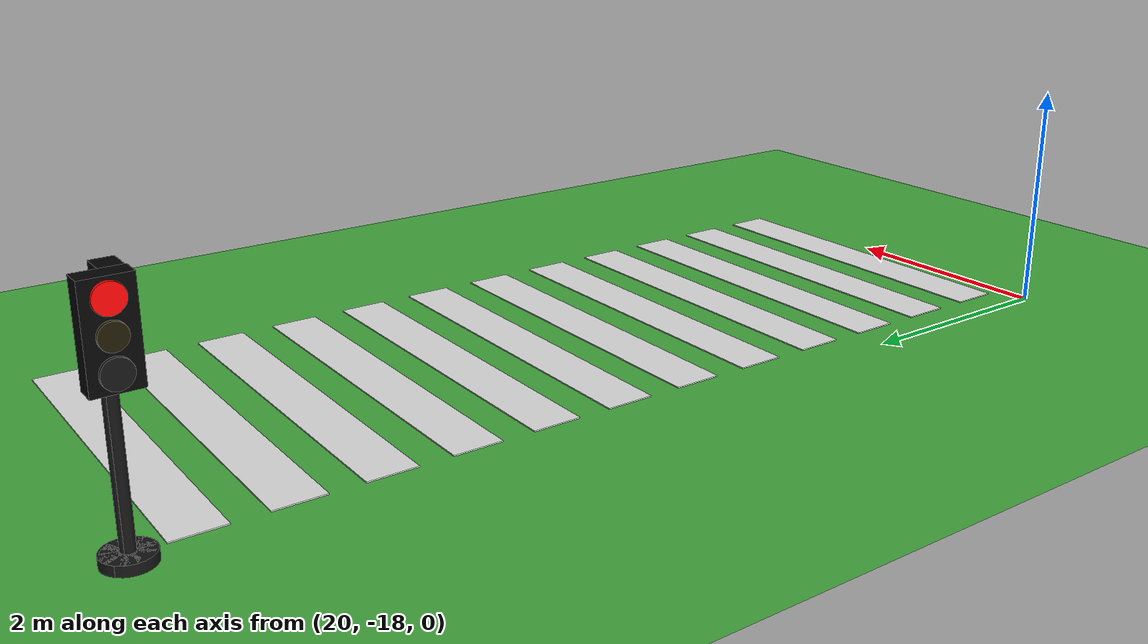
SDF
<sdf version="1.10">
 <world name="city_second">
  <model name="ground_plane">
   <static>true</static>
   <link name="link">
    <collision name="collision">
     <geometry><plane><normal>0 0 1</normal><size>300 300</size></plane></geometry>
    </collision>
    <visual name="visual">
     <geometry><plane><normal>0 0 1</normal><size>300 300</size></plane></geometry>
     <material>
      <ambient>0.280000001 0.689999998 0.25999999 1</ambient>
      <diffuse>0.280000001 0.689999998 0.25999999 1</diffuse>
      <specular>0.0299999993 0.0299999993 0.0299999993 1</specular>
     </material>
    </visual>
    <inertial>
     <mass>1</mass>
     <inertia><ixx>1</ixx><ixy>0</ixy><ixz>0</ixz><iyy>1</iyy><iyz>0</iyz><izz>1</izz></inertia>
    </inertial>
   </link>
  </model>
  <model name="crosswalk_v_2_1_east_5_4">
   <static>true</static>
   <pose>21.8748 -13.7462 0.017000000000000001 0 0 0</pose>
   <link name="stripe_1">
    <collision name="collision">
     <geometry><box><size>3.2000000000000002 0.41999999999999998 0.01</size></box></geometry>
    </collision>
    <visual name="visual">
     <geometry><box><size>3.2000000000000002 0.41999999999999998 0.01</size></box></geometry>
     <material>
      <ambient>0.920000017 0.920000017 0.930000007 1</ambient>
      <diffuse>0.920000017 0.920000017 0.930000007 1</diffuse>
      <specular>0.0299999993 0.0299999993 0.0299999993 1</specular>
     </material>
    </visual>
    <pose>0 -3.8500000000000001 0 0 0 0</pose>
    <inertial>
     <mass>1</mass>
     <inertia><ixx>1</ixx><ixy>0</ixy><ixz>0</ixz><iyy>1</iyy><iyz>0</iyz><izz>1</izz></inertia>
    </inertial>
   </link>
   <link name="stripe_2">
    <collision name="collision">
     <geometry><box><size>3.2000000000000002 0.41999999999999998 0.01</size></box></geometry>
    </collision>
    <visual name="visual">
     <geometry><box><size>3.2000000000000002 0.41999999999999998 0.01</size></box></geometry>
     <material>
      <ambient>0.920000017 0.920000017 0.930000007 1</ambient>
      <diffuse>0.920000017 0.920000017 0.930000007 1</diffuse>
      <specular>0.0299999993 0.0299999993 0.0299999993 1</specular>
     </material>
    </visual>
    <pose>0 -3.1499999999999999 0 0 0 0</pose>
    <inertial>
     <mass>1</mass>
     <inertia><ixx>1</ixx><ixy>0</ixy><ixz>0</ixz><iyy>1</iyy><iyz>0</iyz><izz>1</izz></inertia>
    </inertial>
   </link>
   <link name="stripe_3">
    <collision name="collision">
     <geometry><box><size>3.2000000000000002 0.41999999999999998 0.01</size></box></geometry>
    </collision>
    <visual name="visual">
     <geometry><box><size>3.2000000000000002 0.41999999999999998 0.01</size></box></geometry>
     <material>
      <ambient>0.920000017 0.920000017 0.930000007 1</ambient>
      <diffuse>0.920000017 0.920000017 0.930000007 1</diffuse>
      <specular>0.0299999993 0.0299999993 0.0299999993 1</specular>
     </material>
    </visual>
    <pose>0 -2.4500000000000002 0 0 0 0</pose>
    <inertial>
     <mass>1</mass>
     <inertia><ixx>1</ixx><ixy>0</ixy><ixz>0</ixz><iyy>1</iyy><iyz>0</iyz><izz>1</izz></inertia>
    </inertial>
   </link>
   <link name="stripe_4">
    <collision name="collision">
     <geometry><box><size>3.2000000000000002 0.41999999999999998 0.01</size></box></geometry>
    </collision>
    <visual name="visual">
     <geometry><box><size>3.2000000000000002 0.41999999999999998 0.01</size></box></geometry>
     <material>
      <ambient>0.920000017 0.920000017 0.930000007 1</ambient>
      <diffuse>0.920000017 0.920000017 0.930000007 1</diffuse>
      <specular>0.0299999993 0.0299999993 0.0299999993 1</specular>
     </material>
    </visual>
    <pose>0 -1.75 0 0 0 0</pose>
    <inertial>
     <mass>1</mass>
     <inertia><ixx>1</ixx><ixy>0</ixy><ixz>0</ixz><iyy>1</iyy><iyz>0</iyz><izz>1</izz></inertia>
    </inertial>
   </link>
   <link name="stripe_5">
    <collision name="collision">
     <geometry><box><size>3.2000000000000002 0.41999999999999998 0.01</size></box></geometry>
    </collision>
    <visual name="visual">
     <geometry><box><size>3.2000000000000002 0.41999999999999998 0.01</size></box></geometry>
     <material>
      <ambient>0.920000017 0.920000017 0.930000007 1</ambient>
      <diffuse>0.920000017 0.920000017 0.930000007 1</diffuse>
      <specular>0.0299999993 0.0299999993 0.0299999993 1</specular>
     </material>
    </visual>
    <pose>0 -1.05 0 0 0 0</pose>
    <inertial>
     <mass>1</mass>
     <inertia><ixx>1</ixx><ixy>0</ixy><ixz>0</ixz><iyy>1</iyy><iyz>0</iyz><izz>1</izz></inertia>
    </inertial>
   </link>
   <link name="stripe_6">
    <collision name="collision">
     <geometry><box><size>3.2000000000000002 0.41999999999999998 0.01</size></box></geometry>
    </collision>
    <visual name="visual">
     <geometry><box><size>3.2000000000000002 0.41999999999999998 0.01</size></box></geometry>
     <material>
      <ambient>0.920000017 0.920000017 0.930000007 1</ambient>
      <diffuse>0.920000017 0.920000017 0.930000007 1</diffuse>
      <specular>0.0299999993 0.0299999993 0.0299999993 1</specular>
     </material>
    </visual>
    <pose>0 -0.34999999999999998 0 0 0 0</pose>
    <inertial>
     <mass>1</mass>
     <inertia><ixx>1</ixx><ixy>0</ixy><ixz>0</ixz><iyy>1</iyy><iyz>0</iyz><izz>1</izz></inertia>
    </inertial>
   </link>
   <link name="stripe_7">
    <collision name="collision">
     <geometry><box><size>3.2000000000000002 0.41999999999999998 0.01</size></box></geometry>
    </collision>
    <visual name="visual">
     <geometry><box><size>3.2000000000000002 0.41999999999999998 0.01</size></box></geometry>
     <material>
      <ambient>0.920000017 0.920000017 0.930000007 1</ambient>
      <diffuse>0.920000017 0.920000017 0.930000007 1</diffuse>
      <specular>0.0299999993 0.0299999993 0.0299999993 1</specular>
     </material>
    </visual>
    <pose>0 0.34999999999999998 0 0 0 0</pose>
    <inertial>
     <mass>1</mass>
     <inertia><ixx>1</ixx><ixy>0</ixy><ixz>0</ixz><iyy>1</iyy><iyz>0</iyz><izz>1</izz></inertia>
    </inertial>
   </link>
   <link name="stripe_8">
    <collision name="collision">
     <geometry><box><size>3.2000000000000002 0.41999999999999998 0.01</size></box></geometry>
    </collision>
    <visual name="visual">
     <geometry><box><size>3.2000000000000002 0.41999999999999998 0.01</size></box></geometry>
     <material>
      <ambient>0.920000017 0.920000017 0.930000007 1</ambient>
      <diffuse>0.920000017 0.920000017 0.930000007 1</diffuse>
      <specular>0.0299999993 0.0299999993 0.0299999993 1</specular>
     </material>
    </visual>
    <pose>0 1.05 0 0 0 0</pose>
    <inertial>
     <mass>1</mass>
     <inertia><ixx>1</ixx><ixy>0</ixy><ixz>0</ixz><iyy>1</iyy><iyz>0</iyz><izz>1</izz></inertia>
    </inertial>
   </link>
   <link name="stripe_9">
    <collision name="collision">
     <geometry><box><size>3.2000000000000002 0.41999999999999998 0.01</size></box></geometry>
    </collision>
    <visual name="visual">
     <geometry><box><size>3.2000000000000002 0.41999999999999998 0.01</size></box></geometry>
     <material>
      <ambient>0.920000017 0.920000017 0.930000007 1</ambient>
      <diffuse>0.920000017 0.920000017 0.930000007 1</diffuse>
      <specular>0.0299999993 0.0299999993 0.0299999993 1</specular>
     </material>
    </visual>
    <pose>0 1.75 0 0 0 0</pose>
    <inertial>
     <mass>1</mass>
     <inertia><ixx>1</ixx><ixy>0</ixy><ixz>0</ixz><iyy>1</iyy><iyz>0</iyz><izz>1</izz></inertia>
    </inertial>
   </link>
   <link name="stripe_10">
    <collision name="collision">
     <geometry><box><size>3.2000000000000002 0.41999999999999998 0.01</size></box></geometry>
    </collision>
    <visual name="visual">
     <geometry><box><size>3.2000000000000002 0.41999999999999998 0.01</size></box></geometry>
     <material>
      <ambient>0.920000017 0.920000017 0.930000007 1</ambient>
      <diffuse>0.920000017 0.920000017 0.930000007 1</diffuse>
      <specular>0.0299999993 0.0299999993 0.0299999993 1</specular>
     </material>
    </visual>
    <pose>0 2.4500000000000002 0 0 0 0</pose>
    <inertial>
     <mass>1</mass>
     <inertia><ixx>1</ixx><ixy>0</ixy><ixz>0</ixz><iyy>1</iyy><iyz>0</iyz><izz>1</izz></inertia>
    </inertial>
   </link>
   <link name="stripe_11">
    <collision name="collision">
     <geometry><box><size>3.2000000000000002 0.41999999999999998 0.01</size></box></geometry>
    </collision>
    <visual name="visual">
     <geometry><box><size>3.2000000000000002 0.41999999999999998 0.01</size></box></geometry>
     <material>
      <ambient>0.920000017 0.920000017 0.930000007 1</ambient>
      <diffuse>0.920000017 0.920000017 0.930000007 1</diffuse>
      <specular>0.0299999993 0.0299999993 0.0299999993 1</specular>
     </material>
    </visual>
    <pose>0 3.1499999999999999 0 0 0 0</pose>
    <inertial>
     <mass>1</mass>
     <inertia><ixx>1</ixx><ixy>0</ixy><ixz>0</ixz><iyy>1</iyy><iyz>0</iyz><izz>1</izz></inertia>
    </inertial>
   </link>
   <link name="stripe_12">
    <collision name="collision">
     <geometry><box><size>3.2000000000000002 0.41999999999999998 0.01</size></box></geometry>
    </collision>
    <visual name="visual">
     <geometry><box><size>3.2000000000000002 0.41999999999999998 0.01</size></box></geometry>
     <material>
      <ambient>0.920000017 0.920000017 0.930000007 1</ambient>
      <diffuse>0.920000017 0.920000017 0.930000007 1</diffuse>
      <specular>0.0299999993 0.0299999993 0.0299999993 1</specular>
     </material>
    </visual>
    <pose>0 3.8500000000000001 0 0 0 0</pose>
    <inertial>
     <mass>1</mass>
     <inertia><ixx>1</ixx><ixy>0</ixy><ixz>0</ixz><iyy>1</iyy><iyz>0</iyz><izz>1</izz></inertia>
    </inertial>
   </link>
  </model>
  <model name="simple_traffic_light_red_west_2">
   <static>true</static>
   <pose>20.209085163271727 -9.432895705974973 -6.9388939039072284e-18 0 0 1.5707999672671704</pose>
   <link name="base">
    <pose>0 0 0.040000000000000001 0 0 0</pose>
    <collision name="collision">
     <geometry>
      <cylinder><radius>0.17999999999999999</radius><length>0.080000000000000002</length></cylinder>
     </geometry>
    </collision>
    <visual name="visual">
     <geometry>
      <cylinder><radius>0.17999999999999999</radius><length>0.080000000000000002</length></cylinder>
     </geometry>
     <material>
      <ambient>0.0799999982 0.0799999982 0.0799999982 1</ambient>
      <diffuse>0.0799999982 0.0799999982 0.0799999982 1</diffuse>
      <specular>0.150000006 0.150000006 0.150000006 1</specular>
      <emissive>0 0 0 1</emissive>
     </material>
    </visual>
    <inertial>
     <mass>1</mass>
     <inertia><ixx>1</ixx><ixy>0</ixy><ixz>0</ixz><iyy>1</iyy><iyz>0</iyz><izz>1</izz></inertia>
    </inertial>
   </link>
   <link name="pole">
    <pose>0 0 0.80000000000000004 0 0 0</pose>
    <collision name="collision">
     <geometry>
      <cylinder><radius>0.044999999999999998</radius><length>1.6000000000000001</length></cylinder>
     </geometry>
    </collision>
    <visual name="visual">
     <geometry>
      <cylinder><radius>0.044999999999999998</radius><length>1.6000000000000001</length></cylinder>
     </geometry>
     <material>
      <ambient>0.0799999982 0.0799999982 0.0799999982 1</ambient>
      <diffuse>0.0799999982 0.0799999982 0.0799999982 1</diffuse>
      <specular>0.150000006 0.150000006 0.150000006 1</specular>
      <emissive>0 0 0 1</emissive>
     </material>
    </visual>
    <inertial>
     <mass>1</mass>
     <inertia><ixx>1</ixx><ixy>0</ixy><ixz>0</ixz><iyy>1</iyy><iyz>0</iyz><izz>1</izz></inertia>
    </inertial>
   </link>
   <link name="signal_box">
    <pose>-7.1054273576010019e-15 0.090000000000003411 1.5500000000000003 0 0 0</pose>
    <collision name="collision">
     <geometry><box><size>0.34000000000000002 0.16 0.71999999999999997</size></box></geometry>
    </collision>
    <visual name="visual">
     <geometry><box><size>0.34000000000000002 0.16 0.71999999999999997</size></box></geometry>
     <material>
      <ambient>0.0199999996 0.0199999996 0.0199999996 1</ambient>
      <diffuse>0.0199999996 0.0199999996 0.0199999996 1</diffuse>
      <specular>0.150000006 0.150000006 0.150000006 1</specular>
      <emissive>0 0 0 1</emissive>
     </material>
    </visual>
    <inertial>
     <mass>1</mass>
     <inertia><ixx>1</ixx><ixy>0</ixy><ixz>0</ixz><iyy>1</iyy><iyz>0</iyz><izz>1</izz></inertia>
    </inertial>
   </link>
   <link name="red_lens">
    <pose>0 0.18100000000000449 1.78 1.5707963267999998 8.0126081257495458e-28 -3.1401849173675498e-16</pose>
    <collision name="collision">
     <geometry><cylinder><radius>0.105</radius><length>0.035000000000000003</length></cylinder></geometry>
    </collision>
    <visual name="visual">
     <geometry><cylinder><radius>0.105</radius><length>0.035000000000000003</length></cylinder></geometry>
     <material>
      <ambient>1 0.0199999996 0.0199999996 1</ambient>
      <diffuse>1 0.0199999996 0.0199999996 1</diffuse>
      <specular>0.150000006 0.150000006 0.150000006 1</specular>
      <emissive>1 0.0199999996 0.0199999996 1</emissive>
     </material>
    </visual>
    <inertial>
     <mass>1</mass>
     <inertia><ixx>1</ixx><ixy>0</ixy><ixz>0</ixz><iyy>1</iyy><iyz>0</iyz><izz>1</izz></inertia>
    </inertial>
   </link>
   <link name="yellow_lens">
    <pose>-7.1054273576010019e-15 0.18200000000000216 1.5500000000000003 1.5707963267999998 8.0126081257495458e-28 -3.1401849173675498e-16</pose>
    <collision name="collision">
     <geometry>
      <cylinder><radius>0.095000000000000001</radius><length>0.035000000000000003</length></cylinder>
     </geometry>
    </collision>
    <visual name="visual">
     <geometry>
      <cylinder><radius>0.095000000000000001</radius><length>0.035000000000000003</length></cylinder>
     </geometry>
     <material>
      <ambient>0.119999997 0.100000001 0.0199999996 1</ambient>
      <diffuse>0.119999997 0.100000001 0.0199999996 1</diffuse>
      <specular>0.150000006 0.150000006 0.150000006 1</specular>
      <emissive>0 0 0 1</emissive>
     </material>
    </visual>
    <inertial>
     <mass>1</mass>
     <inertia><ixx>1</ixx><ixy>0</ixy><ixz>0</ixz><iyy>1</iyy><iyz>0</iyz><izz>1</izz></inertia>
    </inertial>
   </link>
   <link name="green_lens">
    <pose>0 0.18300000000000693 1.3199999999999998 1.5707963267999998 8.0126081257495458e-28 -3.1401849173675498e-16</pose>
    <collision name="collision">
     <geometry><cylinder><radius>0.105</radius><length>0.035000000000000003</length></cylinder></geometry>
    </collision>
    <visual name="visual">
     <geometry><cylinder><radius>0.105</radius><length>0.035000000000000003</length></cylinder></geometry>
     <material>
      <ambient>0.0799999982 0.0799999982 0.0799999982 1</ambient>
      <diffuse>0.0799999982 0.0799999982 0.0799999982 1</diffuse>
      <specular>0.150000006 0.150000006 0.150000006 1</specular>
      <emissive>0 0 0 1</emissive>
     </material>
    </visual>
    <inertial>
     <mass>1</mass>
     <inertia><ixx>1</ixx><ixy>0</ixy><ixz>0</ixz><iyy>1</iyy><iyz>0</iyz><izz>1</izz></inertia>
    </inertial>
   </link>
   <light name="red_glow" type="point">
    <pose>0 0.28 1.78 0 0 0</pose>
    <diffuse>1 0.02 0.02 1</diffuse>
    <specular>1 0.02 0.02 1</specular>
    <attenuation>
     <range>3.0</range>
     <constant>0.8</constant>
     <linear>0.15</linear>
     <quadratic>0.02</quadratic>
    </attenuation>
    <cast_shadows>false</cast_shadows>
   </light>
  </model>
  <model name="simple_traffic_light_green_south_1_2">
   <static>true</static>
   <pose>20.220117694941631 -9.4223803089731213 0 0 0 -3.1415900000000754</pose>
   <link name="base">
    <pose>0 0 0.040000000000000001 0 0 0</pose>
    <collision name="collision">
     <geometry>
      <cylinder><radius>0.17999999999999999</radius><length>0.080000000000000002</length></cylinder>
     </geometry>
    </collision>
    <visual name="visual">
     <geometry>
      <cylinder><radius>0.17999999999999999</radius><length>0.080000000000000002</length></cylinder>
     </geometry>
     <material>
      <ambient>0.0799999982 0.0799999982 0.0799999982 1</ambient>
      <diffuse>0.0799999982 0.0799999982 0.0799999982 1</diffuse>
      <specular>0.150000006 0.150000006 0.150000006 1</specular>
      <emissive>0 0 0 1</emissive>
     </material>
    </visual>
   </link>
   <link name="pole">
    <pose>0 0 0.80000000000000004 0 0 0</pose>
    <collision name="collision">
     <geometry>
      <cylinder><radius>0.044999999999999998</radius><length>1.6000000000000001</length></cylinder>
     </geometry>
    </collision>
    <visual name="visual">
     <geometry>
      <cylinder><radius>0.044999999999999998</radius><length>1.6000000000000001</length></cylinder>
     </geometry>
     <material>
      <ambient>0.0799999982 0.0799999982 0.0799999982 1</ambient>
      <diffuse>0.0799999982 0.0799999982 0.0799999982 1</diffuse>
      <specular>0.150000006 0.150000006 0.150000006 1</specular>
      <emissive>0 0 0 1</emissive>
     </material>
    </visual>
   </link>
   <link name="signal_box">
    <pose>0 0.089999999999999997 1.55 0 0 0</pose>
    <collision name="collision">
     <geometry><box><size>0.34000000000000002 0.16 0.71999999999999997</size></box></geometry>
    </collision>
    <visual name="visual">
     <geometry><box><size>0.34000000000000002 0.16 0.71999999999999997</size></box></geometry>
     <material>
      <ambient>0.0199999996 0.0199999996 0.0199999996 1</ambient>
      <diffuse>0.0199999996 0.0199999996 0.0199999996 1</diffuse>
      <specular>0.150000006 0.150000006 0.150000006 1</specular>
      <emissive>0 0 0 1</emissive>
     </material>
    </visual>
   </link>
   <link name="red_lens">
    <pose>0 0.18099999999999999 1.78 1.5707963268 0 0</pose>
    <collision name="collision">
     <geometry><cylinder><radius>0.105</radius><length>0.035000000000000003</length></cylinder></geometry>
    </collision>
    <visual name="visual">
     <geometry><cylinder><radius>0.105</radius><length>0.035000000000000003</length></cylinder></geometry>
     <material>
      <ambient>0.0799999982 0.0799999982 0.0799999982 1</ambient>
      <diffuse>0.0799999982 0.0799999982 0.0799999982 1</diffuse>
      <specular>0.150000006 0.150000006 0.150000006 1</specular>
      <emissive>0 0 0 1</emissive>
     </material>
    </visual>
   </link>
   <link name="yellow_lens">
    <pose>0 0.182 1.55 1.5707963268 0 0</pose>
    <collision name="collision">
     <geometry>
      <cylinder><radius>0.095000000000000001</radius><length>0.035000000000000003</length></cylinder>
     </geometry>
    </collision>
    <visual name="visual">
     <geometry>
      <cylinder><radius>0.095000000000000001</radius><length>0.035000000000000003</length></cylinder>
     </geometry>
     <material>
      <ambient>0.119999997 0.100000001 0.0199999996 1</ambient>
      <diffuse>0.119999997 0.100000001 0.0199999996 1</diffuse>
      <specular>0.150000006 0.150000006 0.150000006 1</specular>
      <emissive>0 0 0 1</emissive>
     </material>
    </visual>
   </link>
   <link name="green_lens">
    <pose>0 0.183 1.3200000000000001 1.5707963268 0 0</pose>
    <collision name="collision">
     <geometry><cylinder><radius>0.105</radius><length>0.035000000000000003</length></cylinder></geometry>
    </collision>
    <visual name="visual">
     <geometry><cylinder><radius>0.105</radius><length>0.035000000000000003</length></cylinder></geometry>
     <material>
      <ambient>0.0199999996 1 0.0199999996 1</ambient>
      <diffuse>0.0199999996 1 0.0199999996 1</diffuse>
      <specular>0.150000006 0.150000006 0.150000006 1</specular>
      <emissive>0.0199999996 1 0.0199999996 1</emissive>
     </material>
    </visual>
   </link>
   <light name="green_glow" type="point">
    <pose>0 0.28 1.32 0 0 0</pose>
    <diffuse>0.02 1 0.02 1</diffuse>
    <specular>0.02 1 0.02 1</specular>
    <attenuation>
     <range>3.0</range>
     <constant>0.8</constant>
     <linear>0.15</linear>
     <quadratic>0.02</quadratic>
    </attenuation>
    <cast_shadows>false</cast_shadows>
   </light>
  </model>
 </world>
</sdf>
